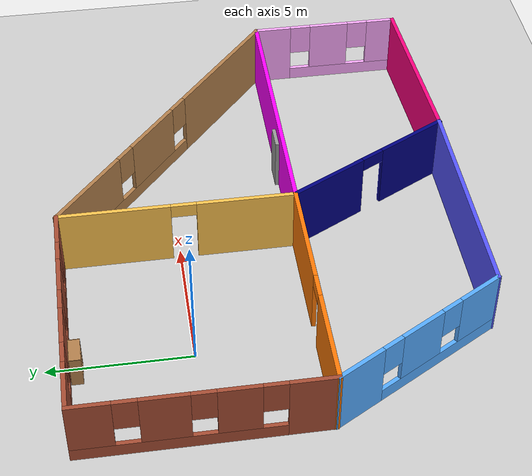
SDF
<sdf version="1.6">
 <world name="default">
  <light name="sun" type="directional">
   <pose>0 0 10 0 -0 0</pose>
   <diffuse>0.8 0.8 0.8 1</diffuse>
   <specular>0.2 0.2 0.2 1</specular>
   <attenuation>
    <range>1000</range>
    <constant>0.9</constant>
    <linear>0.01</linear>
    <quadratic>0.001</quadratic>
   </attenuation>
   <direction>-0.5 0.1 -0.9</direction>
  </light>
  <model name="ground_plane">
   <static>1</static>
   <link name="link">
    <collision name="collision">
     <geometry><plane><normal>0 0 1</normal><size>100 100</size></plane></geometry>
     <surface>
      <contact><collide_bitmask>65535</collide_bitmask></contact>
      <friction><ode><mu>100</mu><mu2>50</mu2></ode></friction>
     </surface>
    </collision>
    <visual name="visual">
     <cast_shadows>0</cast_shadows>
     <geometry><plane><normal>0 0 1</normal><size>100 100</size></plane></geometry>
     <material>
      <script><uri>file://media/materials/scripts/gazebo.material</uri><name>Gazebo/Grey</name></script>
     </material>
    </visual>
   </link>
  </model>
  <gravity>0 0 -9.8</gravity>
  <magnetic_field>6e-06 2.3e-05 -4.2e-05</magnetic_field>
  <atmosphere type="adiabatic"/>
  <physics name="default_physics" default="0" type="ode">
   <max_step_size>0.001</max_step_size>
   <real_time_factor>1</real_time_factor>
   <real_time_update_rate>1000</real_time_update_rate>
  </physics>
  <scene><ambient>0.4 0.4 0.4 1</ambient><background>0.7 0.7 0.7 1</background><shadows>1</shadows></scene>
  <spherical_coordinates>
   <surface_model>EARTH_WGS84</surface_model>
   <latitude_deg>0</latitude_deg>
   <longitude_deg>0</longitude_deg>
   <elevation>0</elevation>
   <heading_deg>0</heading_deg>
  </spherical_coordinates>
  <model name="4_rooms">
   <pose>5.52291 -2.92575 0 0 -0 0</pose>
   <link name="Door_2">
    <collision name="Door_2_Collision">
     <geometry><box><size>0.9 0.17 2</size></box></geometry>
     <pose>0 0 1 0 -0 0</pose>
    </collision>
    <visual name="Door_2_Visual">
     <pose>0 0 1 0 -0 0</pose>
     <geometry><box><size>0.9 0.17 2</size></box></geometry>
     <material>
      <script><uri>file://media/materials/scripts/gazebo.material</uri><name>Gazebo/Grey</name></script>
     </material>
    </visual>
    <pose>2.97038 -1.08394 0 0 -0 0</pose>
   </link>
   <link name="Wall_0">
    <pose>-9.10163 2.96451 0 0 -0 1.5708</pose>
    <visual name="Wall_0_Visual_0">
     <pose>-3.43285 0 1.25 0 -0 0</pose>
     <geometry><box><size>1.63429 0.15 2.5</size></box></geometry>
     <material>
      <script><uri>file://media/materials/scripts/gazebo.material</uri><name>Gazebo/Bricks</name></script>
      <ambient>1 1 1 1</ambient>
     </material>
     <meta><layer>0</layer></meta>
    </visual>
    <collision name="Wall_0_Collision_0">
     <geometry><box><size>1.63429 0.15 2.5</size></box></geometry>
     <pose>-3.43285 0 1.25 0 -0 0</pose>
    </collision>
    <visual name="Wall_0_Visual_1">
     <pose>0.817146 0 0.25 0 -0 0</pose>
     <geometry><box><size>6.86571 0.15 0.5</size></box></geometry>
     <material>
      <script><uri>file://media/materials/scripts/gazebo.material</uri><name>Gazebo/Bricks</name></script>
      <ambient>1 1 1 1</ambient>
     </material>
     <meta><layer>0</layer></meta>
    </visual>
    <collision name="Wall_0_Collision_1">
     <geometry><box><size>6.86571 0.15 0.5</size></box></geometry>
     <pose>0.817146 0 0.25 0 -0 0</pose>
    </collision>
    <visual name="Wall_0_Visual_2">
     <pose>-1.10821 0 1.5 0 -0 0</pose>
     <geometry><box><size>1.415 0.15 2</size></box></geometry>
     <material>
      <script><uri>file://media/materials/scripts/gazebo.material</uri><name>Gazebo/Bricks</name></script>
      <ambient>1 1 1 1</ambient>
     </material>
     <meta><layer>0</layer></meta>
    </visual>
    <collision name="Wall_0_Collision_2">
     <geometry><box><size>1.415 0.15 2</size></box></geometry>
     <pose>-1.10821 0 1.5 0 -0 0</pose>
    </collision>
    <visual name="Wall_0_Visual_3">
     <pose>1.19909 0 1.5 0 -0 0</pose>
     <geometry><box><size>1.59959 0.15 2</size></box></geometry>
     <material>
      <script><uri>file://media/materials/scripts/gazebo.material</uri><name>Gazebo/Bricks</name></script>
      <ambient>1 1 1 1</ambient>
     </material>
     <meta><layer>0</layer></meta>
    </visual>
    <collision name="Wall_0_Collision_3">
     <geometry><box><size>1.59959 0.15 2</size></box></geometry>
     <pose>1.19909 0 1.5 0 -0 0</pose>
    </collision>
    <visual name="Wall_0_Visual_4">
     <pose>3.52444 0 1.5 0 -0 0</pose>
     <geometry><box><size>1.45112 0.15 2</size></box></geometry>
     <material>
      <script><uri>file://media/materials/scripts/gazebo.material</uri><name>Gazebo/Bricks</name></script>
      <ambient>1 1 1 1</ambient>
     </material>
     <meta><layer>0</layer></meta>
    </visual>
    <collision name="Wall_0_Collision_4">
     <geometry><box><size>1.45112 0.15 2</size></box></geometry>
     <pose>3.52444 0 1.5 0 -0 0</pose>
    </collision>
    <visual name="Wall_0_Visual_5">
     <pose>-2.21571 0 1.9 0 -0 0</pose>
     <geometry><box><size>0.8 0.15 1.2</size></box></geometry>
     <material>
      <script><uri>file://media/materials/scripts/gazebo.material</uri><name>Gazebo/Bricks</name></script>
      <ambient>1 1 1 1</ambient>
     </material>
     <meta><layer>0</layer></meta>
    </visual>
    <collision name="Wall_0_Collision_5">
     <geometry><box><size>0.8 0.15 1.2</size></box></geometry>
     <pose>-2.21571 0 1.9 0 -0 0</pose>
    </collision>
    <visual name="Wall_0_Visual_6">
     <pose>-0.000704 0 1.9 0 -0 0</pose>
     <geometry><box><size>0.8 0.15 1.2</size></box></geometry>
     <material>
      <script><uri>file://media/materials/scripts/gazebo.material</uri><name>Gazebo/Bricks</name></script>
      <ambient>1 1 1 1</ambient>
     </material>
     <meta><layer>0</layer></meta>
    </visual>
    <collision name="Wall_0_Collision_6">
     <geometry><box><size>0.8 0.15 1.2</size></box></geometry>
     <pose>-0.000704 0 1.9 0 -0 0</pose>
    </collision>
    <visual name="Wall_0_Visual_7">
     <pose>2.39888 0 1.9 0 -0 0</pose>
     <geometry><box><size>0.8 0.15 1.2</size></box></geometry>
     <material>
      <script><uri>file://media/materials/scripts/gazebo.material</uri><name>Gazebo/Bricks</name></script>
      <ambient>1 1 1 1</ambient>
     </material>
     <meta><layer>0</layer></meta>
    </visual>
    <collision name="Wall_0_Collision_7">
     <geometry><box><size>0.8 0.15 1.2</size></box></geometry>
     <pose>2.39888 0 1.9 0 -0 0</pose>
    </collision>
   </link>
   <link name="Wall_1">
    <pose>-4.92663 7.13951 0 0 -0 0</pose>
    <visual name="Wall_1_Visual_0">
     <pose>-3.3024 0 1.25 0 -0 0</pose>
     <geometry><box><size>1.8952 0.15 2.5</size></box></geometry>
     <material>
      <script><uri>file://media/materials/scripts/gazebo.material</uri><name>Gazebo/Bricks</name></script>
      <ambient>1 1 1 1</ambient>
     </material>
     <meta><layer>0</layer></meta>
    </visual>
    <collision name="Wall_1_Collision_0">
     <geometry><box><size>1.8952 0.15 2.5</size></box></geometry>
     <pose>-3.3024 0 1.25 0 -0 0</pose>
    </collision>
    <visual name="Wall_1_Visual_1">
     <pose>0.947601 0 0.25 0 -0 0</pose>
     <geometry><box><size>6.6048 0.15 0.5</size></box></geometry>
     <material>
      <script><uri>file://media/materials/scripts/gazebo.material</uri><name>Gazebo/Bricks</name></script>
      <ambient>1 1 1 1</ambient>
     </material>
     <meta><layer>0</layer></meta>
    </visual>
    <collision name="Wall_1_Collision_1">
     <geometry><box><size>6.6048 0.15 0.5</size></box></geometry>
     <pose>0.947601 0 0.25 0 -0 0</pose>
    </collision>
    <visual name="Wall_1_Visual_2">
     <pose>-0.822041 0 1.5 0 -0 0</pose>
     <geometry><box><size>1.46551 0.15 2</size></box></geometry>
     <material>
      <script><uri>file://media/materials/scripts/gazebo.material</uri><name>Gazebo/Bricks</name></script>
      <ambient>1 1 1 1</ambient>
     </material>
     <meta><layer>0</layer></meta>
    </visual>
    <collision name="Wall_1_Collision_2">
     <geometry><box><size>1.46551 0.15 2</size></box></geometry>
     <pose>-0.822041 0 1.5 0 -0 0</pose>
    </collision>
    <visual name="Wall_1_Visual_3">
     <pose>1.42324 0 1.5 0 -0 0</pose>
     <geometry><box><size>1.42506 0.15 2</size></box></geometry>
     <material>
      <script><uri>file://media/materials/scripts/gazebo.material</uri><name>Gazebo/Bricks</name></script>
      <ambient>1 1 1 1</ambient>
     </material>
     <meta><layer>0</layer></meta>
    </visual>
    <collision name="Wall_1_Collision_3">
     <geometry><box><size>1.42506 0.15 2</size></box></geometry>
     <pose>1.42324 0 1.5 0 -0 0</pose>
    </collision>
    <visual name="Wall_1_Visual_4">
     <pose>3.59289 0 1.5 0 -0 0</pose>
     <geometry><box><size>1.31423 0.15 2</size></box></geometry>
     <material>
      <script><uri>file://media/materials/scripts/gazebo.material</uri><name>Gazebo/Bricks</name></script>
      <ambient>1 1 1 1</ambient>
     </material>
     <meta><layer>0</layer></meta>
    </visual>
    <collision name="Wall_1_Collision_4">
     <geometry><box><size>1.31423 0.15 2</size></box></geometry>
     <pose>3.59289 0 1.5 0 -0 0</pose>
    </collision>
    <visual name="Wall_1_Visual_5">
     <pose>-1.9548 0 1.9 0 -0 0</pose>
     <geometry><box><size>0.8 0.15 1.2</size></box></geometry>
     <material>
      <script><uri>file://media/materials/scripts/gazebo.material</uri><name>Gazebo/Bricks</name></script>
      <ambient>1 1 1 1</ambient>
     </material>
     <meta><layer>0</layer></meta>
    </visual>
    <collision name="Wall_1_Collision_5">
     <geometry><box><size>0.8 0.15 1.2</size></box></geometry>
     <pose>-1.9548 0 1.9 0 -0 0</pose>
    </collision>
    <visual name="Wall_1_Visual_6">
     <pose>0.310715 0 1.9 0 -0 0</pose>
     <geometry><box><size>0.8 0.15 1.2</size></box></geometry>
     <material>
      <script><uri>file://media/materials/scripts/gazebo.material</uri><name>Gazebo/Bricks</name></script>
      <ambient>1 1 1 1</ambient>
     </material>
     <meta><layer>0</layer></meta>
    </visual>
    <collision name="Wall_1_Collision_6">
     <geometry><box><size>0.8 0.15 1.2</size></box></geometry>
     <pose>0.310715 0 1.9 0 -0 0</pose>
    </collision>
    <visual name="Wall_1_Visual_7">
     <pose>2.53577 0 1.9 0 -0 0</pose>
     <geometry><box><size>0.8 0.15 1.2</size></box></geometry>
     <material>
      <script><uri>file://media/materials/scripts/gazebo.material</uri><name>Gazebo/Bricks</name></script>
      <ambient>1 1 1 1</ambient>
     </material>
     <meta><layer>0</layer></meta>
    </visual>
    <collision name="Wall_1_Collision_7">
     <geometry><box><size>0.8 0.15 1.2</size></box></geometry>
     <pose>2.53577 0 1.9 0 -0 0</pose>
    </collision>
   </link>
   <link name="Wall_10">
    <pose>9.09837 -4.01049 0 0 0 -1.5708</pose>
    <visual name="Wall_10_Visual_0">
     <pose>-2.14055 0 1.25 0 -0 0</pose>
     <geometry><box><size>1.46891 0.15 2.5</size></box></geometry>
     <material>
      <script><uri>file://media/materials/scripts/gazebo.material</uri><name>Gazebo/Grey</name></script>
      <ambient>1 0.666667 1 1</ambient>
     </material>
     <meta><layer>0</layer></meta>
    </visual>
    <collision name="Wall_10_Collision_0">
     <geometry><box><size>1.46891 0.15 2.5</size></box></geometry>
     <pose>-2.14055 0 1.25 0 -0 0</pose>
    </collision>
    <visual name="Wall_10_Visual_1">
     <pose>0.734454 0 0.25 0 -0 0</pose>
     <geometry><box><size>4.28109 0.15 0.5</size></box></geometry>
     <material>
      <script><uri>file://media/materials/scripts/gazebo.material</uri><name>Gazebo/Grey</name></script>
      <ambient>1 0.666667 1 1</ambient>
     </material>
     <meta><layer>0</layer></meta>
    </visual>
    <collision name="Wall_10_Collision_1">
     <geometry><box><size>4.28109 0.15 0.5</size></box></geometry>
     <pose>0.734454 0 0.25 0 -0 0</pose>
    </collision>
    <visual name="Wall_10_Visual_2">
     <pose>0.162937 0 1.5 0 -0 0</pose>
     <geometry><box><size>1.53806 0.15 2</size></box></geometry>
     <material>
      <script><uri>file://media/materials/scripts/gazebo.material</uri><name>Gazebo/Grey</name></script>
      <ambient>1 0.666667 1 1</ambient>
     </material>
     <meta><layer>0</layer></meta>
    </visual>
    <collision name="Wall_10_Collision_2">
     <geometry><box><size>1.53806 0.15 2</size></box></geometry>
     <pose>0.162937 0 1.5 0 -0 0</pose>
    </collision>
    <visual name="Wall_10_Visual_3">
     <pose>2.30348 0 1.5 0 -0 0</pose>
     <geometry><box><size>1.14303 0.15 2</size></box></geometry>
     <material>
      <script><uri>file://media/materials/scripts/gazebo.material</uri><name>Gazebo/Grey</name></script>
      <ambient>1 0.666667 1 1</ambient>
     </material>
     <meta><layer>0</layer></meta>
    </visual>
    <collision name="Wall_10_Collision_3">
     <geometry><box><size>1.14303 0.15 2</size></box></geometry>
     <pose>2.30348 0 1.5 0 -0 0</pose>
    </collision>
    <visual name="Wall_10_Visual_4">
     <pose>-1.00609 0 1.9 0 -0 0</pose>
     <geometry><box><size>0.8 0.15 1.2</size></box></geometry>
     <material>
      <script><uri>file://media/materials/scripts/gazebo.material</uri><name>Gazebo/Grey</name></script>
      <ambient>1 0.666667 1 1</ambient>
     </material>
     <meta><layer>0</layer></meta>
    </visual>
    <collision name="Wall_10_Collision_4">
     <geometry><box><size>0.8 0.15 1.2</size></box></geometry>
     <pose>-1.00609 0 1.9 0 -0 0</pose>
    </collision>
    <visual name="Wall_10_Visual_5">
     <pose>1.33197 0 1.9 0 -0 0</pose>
     <geometry><box><size>0.8 0.15 1.2</size></box></geometry>
     <material>
      <script><uri>file://media/materials/scripts/gazebo.material</uri><name>Gazebo/Grey</name></script>
      <ambient>1 0.666667 1 1</ambient>
     </material>
     <meta><layer>0</layer></meta>
    </visual>
    <collision name="Wall_10_Collision_5">
     <geometry><box><size>0.8 0.15 1.2</size></box></geometry>
     <pose>1.33197 0 1.9 0 -0 0</pose>
    </collision>
   </link>
   <link name="Wall_11">
    <collision name="Wall_11_Collision">
     <geometry><box><size>6.83326 0.15 2.5</size></box></geometry>
     <pose>0 0 1.25 0 -0 0</pose>
    </collision>
    <visual name="Wall_11_Visual">
     <pose>0 0 1.25 0 -0 0</pose>
     <geometry><box><size>6.83326 0.15 2.5</size></box></geometry>
     <material>
      <script><uri>file://media/materials/scripts/gazebo.material</uri><name>Gazebo/Grey</name></script>
      <ambient>1 0 0.498039 1</ambient>
     </material>
     <meta><layer>0</layer></meta>
    </visual>
    <pose>5.76087 -6.97663 0 0 0 -3.09185</pose>
   </link>
   <link name="Wall_2">
    <pose>-0.751628 2.96451 0 0 0 -1.5708</pose>
    <visual name="Wall_2_Visual_0">
     <pose>-2.23622 0 1.25 0 -0 0</pose>
     <geometry><box><size>4.02757 0.15 2.5</size></box></geometry>
     <material>
      <script><uri>file://media/materials/scripts/gazebo.material</uri><name>Gazebo/Grey</name></script>
      <ambient>1 0.764706 0.305882 1</ambient>
     </material>
     <meta><layer>0</layer></meta>
    </visual>
    <collision name="Wall_2_Collision_0">
     <geometry><box><size>4.02757 0.15 2.5</size></box></geometry>
     <pose>-2.23622 0 1.25 0 -0 0</pose>
    </collision>
    <visual name="Wall_2_Visual_1">
     <pose>2.46378 0 1.25 0 -0 0</pose>
     <geometry><box><size>3.57243 0.15 2.5</size></box></geometry>
     <material>
      <script><uri>file://media/materials/scripts/gazebo.material</uri><name>Gazebo/Grey</name></script>
      <ambient>1 0.764706 0.305882 1</ambient>
     </material>
     <meta><layer>0</layer></meta>
    </visual>
    <collision name="Wall_2_Collision_1">
     <geometry><box><size>3.57243 0.15 2.5</size></box></geometry>
     <pose>2.46378 0 1.25 0 -0 0</pose>
    </collision>
    <visual name="Wall_2_Visual_2">
     <pose>0.227567 0 2.25 0 -0 0</pose>
     <geometry><box><size>0.9 0.15 0.5</size></box></geometry>
     <material>
      <script><uri>file://media/materials/scripts/gazebo.material</uri><name>Gazebo/Grey</name></script>
      <ambient>1 0.764706 0.305882 1</ambient>
     </material>
     <meta><layer>0</layer></meta>
    </visual>
    <collision name="Wall_2_Collision_2">
     <geometry><box><size>0.9 0.15 0.5</size></box></geometry>
     <pose>0.227567 0 2.25 0 -0 0</pose>
    </collision>
   </link>
   <link name="Wall_3">
    <pose>-4.92663 -1.21049 0 0 -0 3.14159</pose>
    <visual name="Wall_3_Visual_0">
     <pose>-2.20347 0 1.25 0 -0 0</pose>
     <geometry><box><size>4.09307 0.15 2.5</size></box></geometry>
     <material>
      <script><uri>file://media/materials/scripts/gazebo.material</uri><name>Gazebo/Grey</name></script>
      <ambient>0.996078 0.47451 0.0196078 1</ambient>
     </material>
     <meta><layer>0</layer></meta>
    </visual>
    <collision name="Wall_3_Collision_0">
     <geometry><box><size>4.09307 0.15 2.5</size></box></geometry>
     <pose>-2.20347 0 1.25 0 -0 0</pose>
    </collision>
    <visual name="Wall_3_Visual_1">
     <pose>2.49654 0 1.25 0 -0 0</pose>
     <geometry><box><size>3.50693 0.15 2.5</size></box></geometry>
     <material>
      <script><uri>file://media/materials/scripts/gazebo.material</uri><name>Gazebo/Grey</name></script>
      <ambient>0.996078 0.47451 0.0196078 1</ambient>
     </material>
     <meta><layer>0</layer></meta>
    </visual>
    <collision name="Wall_3_Collision_1">
     <geometry><box><size>3.50693 0.15 2.5</size></box></geometry>
     <pose>2.49654 0 1.25 0 -0 0</pose>
    </collision>
    <visual name="Wall_3_Visual_2">
     <pose>0.293071 0 2.25 0 -0 0</pose>
     <geometry><box><size>0.9 0.15 0.5</size></box></geometry>
     <material>
      <script><uri>file://media/materials/scripts/gazebo.material</uri><name>Gazebo/Grey</name></script>
      <ambient>0.996078 0.47451 0.0196078 1</ambient>
     </material>
     <meta><layer>0</layer></meta>
    </visual>
    <collision name="Wall_3_Collision_2">
     <geometry><box><size>0.9 0.15 0.5</size></box></geometry>
     <pose>0.293071 0 2.25 0 -0 0</pose>
    </collision>
   </link>
   <link name="Wall_4">
    <pose>-7.38913 -4.17663 0 0 0 -1.0472</pose>
    <visual name="Wall_4_Visual_0">
     <pose>-2.55584 0 1.25 0 -0 0</pose>
     <geometry><box><size>1.88832 0.15 2.5</size></box></geometry>
     <material>
      <script><uri>file://media/materials/scripts/gazebo.material</uri><name>Gazebo/Grey</name></script>
      <ambient>0.333333 0.666667 1 1</ambient>
     </material>
     <meta><layer>0</layer></meta>
    </visual>
    <collision name="Wall_4_Collision_0">
     <geometry><box><size>1.88832 0.15 2.5</size></box></geometry>
     <pose>-2.55584 0 1.25 0 -0 0</pose>
    </collision>
    <visual name="Wall_4_Visual_1">
     <pose>0.94416 0 0.25 0 -0 0</pose>
     <geometry><box><size>5.11168 0.15 0.5</size></box></geometry>
     <material>
      <script><uri>file://media/materials/scripts/gazebo.material</uri><name>Gazebo/Grey</name></script>
      <ambient>0.333333 0.666667 1 1</ambient>
     </material>
     <meta><layer>0</layer></meta>
    </visual>
    <collision name="Wall_4_Collision_1">
     <geometry><box><size>5.11168 0.15 0.5</size></box></geometry>
     <pose>0.94416 0 0.25 0 -0 0</pose>
    </collision>
    <visual name="Wall_4_Visual_2">
     <pose>0.062224 0 1.5 0 -0 0</pose>
     <geometry><box><size>1.74781 0.15 2</size></box></geometry>
     <material>
      <script><uri>file://media/materials/scripts/gazebo.material</uri><name>Gazebo/Grey</name></script>
      <ambient>0.333333 0.666667 1 1</ambient>
     </material>
     <meta><layer>0</layer></meta>
    </visual>
    <collision name="Wall_4_Collision_2">
     <geometry><box><size>1.74781 0.15 2</size></box></geometry>
     <pose>0.062224 0 1.5 0 -0 0</pose>
    </collision>
    <visual name="Wall_4_Visual_3">
     <pose>2.61806 0 1.5 0 -0 0</pose>
     <geometry><box><size>1.76387 0.15 2</size></box></geometry>
     <material>
      <script><uri>file://media/materials/scripts/gazebo.material</uri><name>Gazebo/Grey</name></script>
      <ambient>0.333333 0.666667 1 1</ambient>
     </material>
     <meta><layer>0</layer></meta>
    </visual>
    <collision name="Wall_4_Collision_3">
     <geometry><box><size>1.76387 0.15 2</size></box></geometry>
     <pose>2.61806 0 1.5 0 -0 0</pose>
    </collision>
    <visual name="Wall_4_Visual_4">
     <pose>-1.21168 0 1.9 0 -0 0</pose>
     <geometry><box><size>0.8 0.15 1.2</size></box></geometry>
     <material>
      <script><uri>file://media/materials/scripts/gazebo.material</uri><name>Gazebo/Grey</name></script>
      <ambient>0.333333 0.666667 1 1</ambient>
     </material>
     <meta><layer>0</layer></meta>
    </visual>
    <collision name="Wall_4_Collision_4">
     <geometry><box><size>0.8 0.15 1.2</size></box></geometry>
     <pose>-1.21168 0 1.9 0 -0 0</pose>
    </collision>
    <visual name="Wall_4_Visual_5">
     <pose>1.33613 0 1.9 0 -0 0</pose>
     <geometry><box><size>0.8 0.15 1.2</size></box></geometry>
     <material>
      <script><uri>file://media/materials/scripts/gazebo.material</uri><name>Gazebo/Grey</name></script>
      <ambient>0.333333 0.666667 1 1</ambient>
     </material>
     <meta><layer>0</layer></meta>
    </visual>
    <collision name="Wall_4_Collision_5">
     <geometry><box><size>0.8 0.15 1.2</size></box></geometry>
     <pose>1.33613 0 1.9 0 -0 0</pose>
    </collision>
   </link>
   <link name="Wall_5">
    <collision name="Wall_5_Collision">
     <geometry><box><size>8.25 0.15 2.5</size></box></geometry>
     <pose>0 0 1.25 0 -0 0</pose>
    </collision>
    <visual name="Wall_5_Visual">
     <pose>0 0 1.25 0 -0 0</pose>
     <geometry><box><size>8.25 0.15 2.5</size></box></geometry>
     <material>
      <script><uri>file://media/materials/scripts/gazebo.material</uri><name>Gazebo/Grey</name></script>
      <ambient>0.333333 0.333333 1 1</ambient>
     </material>
     <meta><layer>0</layer></meta>
    </visual>
    <pose>-1.62663 -7.14276 0 0 -0 0</pose>
   </link>
   <link name="Wall_6">
    <pose>0.835872 -4.17663 0 0 -0 2.06221</pose>
    <visual name="Wall_6_Visual_0">
     <pose>-2.00658 0 1.25 0 -0 0</pose>
     <geometry><box><size>2.86533 0.15 2.5</size></box></geometry>
     <material>
      <script><uri>file://media/materials/scripts/gazebo.material</uri><name>Gazebo/Grey</name></script>
      <ambient>0 0 0.498039 1</ambient>
     </material>
     <meta><layer>0</layer></meta>
    </visual>
    <collision name="Wall_6_Collision_0">
     <geometry><box><size>2.86533 0.15 2.5</size></box></geometry>
     <pose>-2.00658 0 1.25 0 -0 0</pose>
    </collision>
    <visual name="Wall_6_Visual_1">
     <pose>1.88267 0 1.25 0 -0 0</pose>
     <geometry><box><size>3.11315 0.15 2.5</size></box></geometry>
     <material>
      <script><uri>file://media/materials/scripts/gazebo.material</uri><name>Gazebo/Grey</name></script>
      <ambient>0 0 0.498039 1</ambient>
     </material>
     <meta><layer>0</layer></meta>
    </visual>
    <collision name="Wall_6_Collision_1">
     <geometry><box><size>3.11315 0.15 2.5</size></box></geometry>
     <pose>1.88267 0 1.25 0 -0 0</pose>
    </collision>
    <visual name="Wall_6_Visual_2">
     <pose>-0.123911 0 2.25 0 -0 0</pose>
     <geometry><box><size>0.9 0.15 0.5</size></box></geometry>
     <material>
      <script><uri>file://media/materials/scripts/gazebo.material</uri><name>Gazebo/Grey</name></script>
      <ambient>0 0 0.498039 1</ambient>
     </material>
     <meta><layer>0</layer></meta>
    </visual>
    <collision name="Wall_6_Collision_2">
     <geometry><box><size>0.9 0.15 0.5</size></box></geometry>
     <pose>-0.123911 0 2.25 0 -0 0</pose>
    </collision>
   </link>
   <link name="Wall_7">
    <collision name="Wall_7_Collision">
     <geometry><box><size>10 0.15 2.5</size></box></geometry>
     <pose>0 0 1.25 0 -0 0</pose>
    </collision>
    <visual name="Wall_7_Visual">
     <pose>0 0 1.25 0 -0 0</pose>
     <geometry><box><size>10 0.15 2.5</size></box></geometry>
     <material>
      <script><uri>file://media/materials/scripts/gazebo.material</uri><name>Gazebo/Grey</name></script>
      <ambient>1 0 1 1</ambient>
     </material>
     <meta><layer>0</layer></meta>
    </visual>
    <pose>4.17337 -1.21049 0 0 -0 0</pose>
   </link>
   <link name="Wall_8">
    <pose>4.17337 2.96451 0 0 -0 2.43843</pose>
    <visual name="Wall_8_Visual_0">
     <pose>-3.88765 0 1.25 0 -0 0</pose>
     <geometry><box><size>5.28768 0.15 2.5</size></box></geometry>
     <material>
      <script><uri>file://media/materials/scripts/gazebo.material</uri><name>Gazebo/Wood</name></script>
      <ambient>0.435294 0.796078 0.67451 1</ambient>
     </material>
     <meta><layer>0</layer></meta>
    </visual>
    <collision name="Wall_8_Collision_0">
     <geometry><box><size>5.28768 0.15 2.5</size></box></geometry>
     <pose>-3.88765 0 1.25 0 -0 0</pose>
    </collision>
    <visual name="Wall_8_Visual_1">
     <pose>2.64384 0 0.25 0 -0 0</pose>
     <geometry><box><size>7.7753 0.15 0.5</size></box></geometry>
     <material>
      <script><uri>file://media/materials/scripts/gazebo.material</uri><name>Gazebo/Wood</name></script>
      <ambient>0.435294 0.796078 0.67451 1</ambient>
     </material>
     <meta><layer>0</layer></meta>
    </visual>
    <collision name="Wall_8_Collision_1">
     <geometry><box><size>7.7753 0.15 0.5</size></box></geometry>
     <pose>2.64384 0 0.25 0 -0 0</pose>
    </collision>
    <visual name="Wall_8_Visual_2">
     <pose>0.820172 0 1.5 0 -0 0</pose>
     <geometry><box><size>2.52797 0.15 2</size></box></geometry>
     <material>
      <script><uri>file://media/materials/scripts/gazebo.material</uri><name>Gazebo/Wood</name></script>
      <ambient>0.435294 0.796078 0.67451 1</ambient>
     </material>
     <meta><layer>0</layer></meta>
    </visual>
    <collision name="Wall_8_Collision_2">
     <geometry><box><size>2.52797 0.15 2</size></box></geometry>
     <pose>0.820172 0 1.5 0 -0 0</pose>
    </collision>
    <visual name="Wall_8_Visual_3">
     <pose>4.70782 0 1.5 0 -0 0</pose>
     <geometry><box><size>3.64733 0.15 2</size></box></geometry>
     <material>
      <script><uri>file://media/materials/scripts/gazebo.material</uri><name>Gazebo/Wood</name></script>
      <ambient>0.435294 0.796078 0.67451 1</ambient>
     </material>
     <meta><layer>0</layer></meta>
    </visual>
    <collision name="Wall_8_Collision_3">
     <geometry><box><size>3.64733 0.15 2</size></box></geometry>
     <pose>4.70782 0 1.5 0 -0 0</pose>
    </collision>
    <visual name="Wall_8_Visual_4">
     <pose>-0.84381 0 1.9 0 -0 0</pose>
     <geometry><box><size>0.8 0.15 1.2</size></box></geometry>
     <material>
      <script><uri>file://media/materials/scripts/gazebo.material</uri><name>Gazebo/Wood</name></script>
      <ambient>0.435294 0.796078 0.67451 1</ambient>
     </material>
     <meta><layer>0</layer></meta>
    </visual>
    <collision name="Wall_8_Collision_4">
     <geometry><box><size>0.8 0.15 1.2</size></box></geometry>
     <pose>-0.84381 0 1.9 0 -0 0</pose>
    </collision>
    <visual name="Wall_8_Visual_5">
     <pose>2.48415 0 1.9 0 -0 0</pose>
     <geometry><box><size>0.8 0.15 1.2</size></box></geometry>
     <material>
      <script><uri>file://media/materials/scripts/gazebo.material</uri><name>Gazebo/Wood</name></script>
      <ambient>0.435294 0.796078 0.67451 1</ambient>
     </material>
     <meta><layer>0</layer></meta>
    </visual>
    <collision name="Wall_8_Collision_5">
     <geometry><box><size>0.8 0.15 1.2</size></box></geometry>
     <pose>2.48415 0 1.9 0 -0 0</pose>
    </collision>
   </link>
   <static>1</static>
  </model>
  <model name="bookshelf">
   <static>1</static>
   <link name="link">
    <inertial><mass>1</mass></inertial>
    <collision name="back">
     <pose>0 0.005 0.6 0 -0 0</pose>
     <geometry><box><size>0.9 0.01 1.2</size></box></geometry>
    </collision>
    <visual name="visual1">
     <pose>0 0.005 0.6 0 -0 0</pose>
     <geometry><box><size>0.9 0.01 1.2</size></box></geometry>
     <material>
      <script><uri>file://media/materials/scripts/gazebo.material</uri><name>Gazebo/Wood</name></script>
     </material>
    </visual>
    <collision name="left_side">
     <pose>0.45 -0.195 0.6 0 -0 0</pose>
     <geometry><box><size>0.02 0.4 1.2</size></box></geometry>
    </collision>
    <visual name="visual2">
     <pose>0.45 -0.195 0.6 0 -0 0</pose>
     <geometry><box><size>0.02 0.4 1.2</size></box></geometry>
     <material>
      <script><uri>file://media/materials/scripts/gazebo.material</uri><name>Gazebo/Wood</name></script>
     </material>
    </visual>
    <collision name="right_side">
     <pose>-0.45 -0.195 0.6 0 -0 0</pose>
     <geometry><box><size>0.02 0.4 1.2</size></box></geometry>
    </collision>
    <visual name="visual3">
     <pose>-0.45 -0.195 0.6 0 -0 0</pose>
     <geometry><box><size>0.02 0.4 1.2</size></box></geometry>
     <material>
      <script><uri>file://media/materials/scripts/gazebo.material</uri><name>Gazebo/Wood</name></script>
     </material>
    </visual>
    <collision name="bottom">
     <pose>0 -0.195 0.03 0 -0 0</pose>
     <geometry><box><size>0.88 0.4 0.06</size></box></geometry>
    </collision>
    <visual name="visual4">
     <pose>0 -0.195 0.03 0 -0 0</pose>
     <geometry><box><size>0.88 0.4 0.06</size></box></geometry>
     <material>
      <script><uri>file://media/materials/scripts/gazebo.material</uri><name>Gazebo/Wood</name></script>
     </material>
    </visual>
    <collision name="top">
     <pose>0 -0.195 1.19 0 -0 0</pose>
     <geometry><box><size>0.88 0.4 0.02</size></box></geometry>
    </collision>
    <visual name="visual5">
     <pose>0 -0.195 1.19 0 -0 0</pose>
     <geometry><box><size>0.88 0.4 0.02</size></box></geometry>
     <material>
      <script><uri>file://media/materials/scripts/gazebo.material</uri><name>Gazebo/Wood</name></script>
     </material>
    </visual>
    <collision name="low_shelf">
     <pose>0 -0.195 0.43 0 -0 0</pose>
     <geometry><box><size>0.88 0.4 0.02</size></box></geometry>
    </collision>
    <visual name="visual6">
     <pose>0 -0.195 0.43 0 -0 0</pose>
     <geometry><box><size>0.88 0.4 0.02</size></box></geometry>
     <material>
      <script><uri>file://media/materials/scripts/gazebo.material</uri><name>Gazebo/Wood</name></script>
     </material>
    </visual>
    <collision name="high_shelf">
     <pose>0 -0.195 0.8 0 -0 0</pose>
     <geometry><box><size>0.88 0.4 0.02</size></box></geometry>
    </collision>
    <visual name="visual7">
     <pose>0 -0.195 0.8 0 -0 0</pose>
     <geometry><box><size>0.88 0.4 0.02</size></box></geometry>
     <material>
      <script><uri>file://media/materials/scripts/gazebo.material</uri><name>Gazebo/Wood</name></script>
     </material>
    </visual>
   </link>
   <pose>-0.197738 4.11256 0 0 -0 0</pose>
  </model>
  <model name="cabinet">
   <static>1</static>
   <link name="cabinet_bottom_plate">
    <inertial>
     <pose>0 0 -1 0 -0 0</pose>
     <inertia><ixx>2.05</ixx><ixy>0</ixy><ixz>0</ixz><iyy>2.05</iyy><iyz>0</iyz><izz>2.05</izz></inertia>
     <mass>25</mass>
    </inertial>
    <collision name="cabinet_bottom_plate_geom">
     <pose>0 0 0.01 0 -0 0</pose>
     <geometry><box><size>0.45 0.45 0.02</size></box></geometry>
    </collision>
    <visual name="cabinet_bottom_plate_geom_visual">
     <pose>0 0 0.01 0 -0 0</pose>
     <geometry><box><size>0.45 0.45 0.02</size></box></geometry>
     <material>
      <script><uri>file://media/materials/scripts/gazebo.material</uri><name>Gazebo/Wood</name></script>
     </material>
    </visual>
    <collision name="cabinet_bottom_plate_geom_cabinet_back_plate">
     <pose>0.235 0 0.51 0 -0 0</pose>
     <geometry><box><size>0.02 0.45 1.02</size></box></geometry>
    </collision>
    <visual name="cabinet_bottom_plate_geom_cabinet_back_plate_visual">
     <pose>0.235 0 0.51 0 -0 0</pose>
     <geometry><box><size>0.02 0.45 1.02</size></box></geometry>
     <material>
      <script><uri>file://media/materials/scripts/gazebo.material</uri><name>Gazebo/Wood</name></script>
     </material>
    </visual>
    <collision name="cabinet_bottom_plate_geom_cabinet_left_plate">
     <pose>0 0.235 0.51 0 -0 0</pose>
     <geometry><box><size>0.45 0.02 1.02</size></box></geometry>
    </collision>
    <visual name="cabinet_bottom_plate_geom_cabinet_left_plate_visual">
     <pose>0 0.235 0.51 0 -0 0</pose>
     <geometry><box><size>0.45 0.02 1.02</size></box></geometry>
     <material>
      <script><uri>file://media/materials/scripts/gazebo.material</uri><name>Gazebo/Wood</name></script>
     </material>
    </visual>
    <collision name="cabinet_bottom_plate_geom_cabinet_middle_plate">
     <pose>0 0 0.51 0 -0 0</pose>
     <geometry><box><size>0.45 0.45 0.02</size></box></geometry>
    </collision>
    <visual name="cabinet_bottom_plate_geom_cabinet_middle_plate_visual">
     <pose>0 0 0.51 0 -0 0</pose>
     <geometry><box><size>0.45 0.45 0.02</size></box></geometry>
     <material>
      <script><uri>file://media/materials/scripts/gazebo.material</uri><name>Gazebo/Wood</name></script>
     </material>
    </visual>
    <collision name="cabinet_bottom_plate_geom_cabinet_right_plate">
     <pose>0 -0.235 0.51 0 -0 0</pose>
     <geometry><box><size>0.45 0.02 1.02</size></box></geometry>
    </collision>
    <visual name="cabinet_bottom_plate_geom_cabinet_right_plate_visual">
     <pose>0 -0.235 0.51 0 -0 0</pose>
     <geometry><box><size>0.45 0.02 1.02</size></box></geometry>
     <material>
      <script><uri>file://media/materials/scripts/gazebo.material</uri><name>Gazebo/Wood</name></script>
     </material>
    </visual>
    <collision name="cabinet_bottom_plate_geom_cabinet_top_plate">
     <pose>0 0 1.01 0 -0 0</pose>
     <geometry><box><size>0.45 0.45 0.02</size></box></geometry>
    </collision>
    <visual name="cabinet_bottom_plate_geom_cabinet_top_plate_visual">
     <pose>0 0 1.01 0 -0 0</pose>
     <geometry><box><size>0.45 0.45 0.02</size></box></geometry>
     <material>
      <script><uri>file://media/materials/scripts/gazebo.material</uri><name>Gazebo/Wood</name></script>
     </material>
    </visual>
   </link>
   <pose>-3.17 1.13669 0 0 -0 0</pose>
  </model>
 </world>
</sdf>
